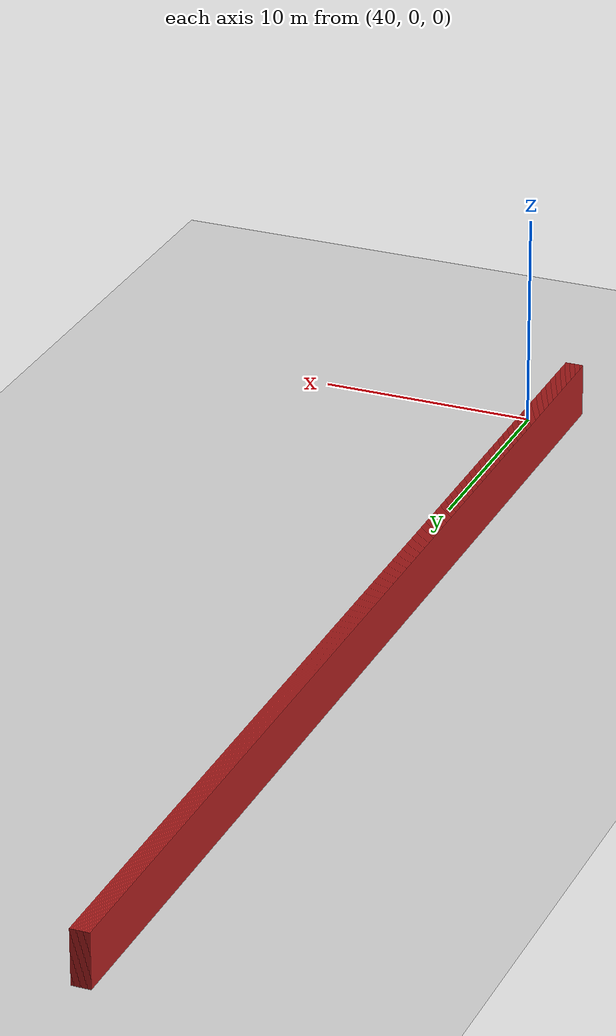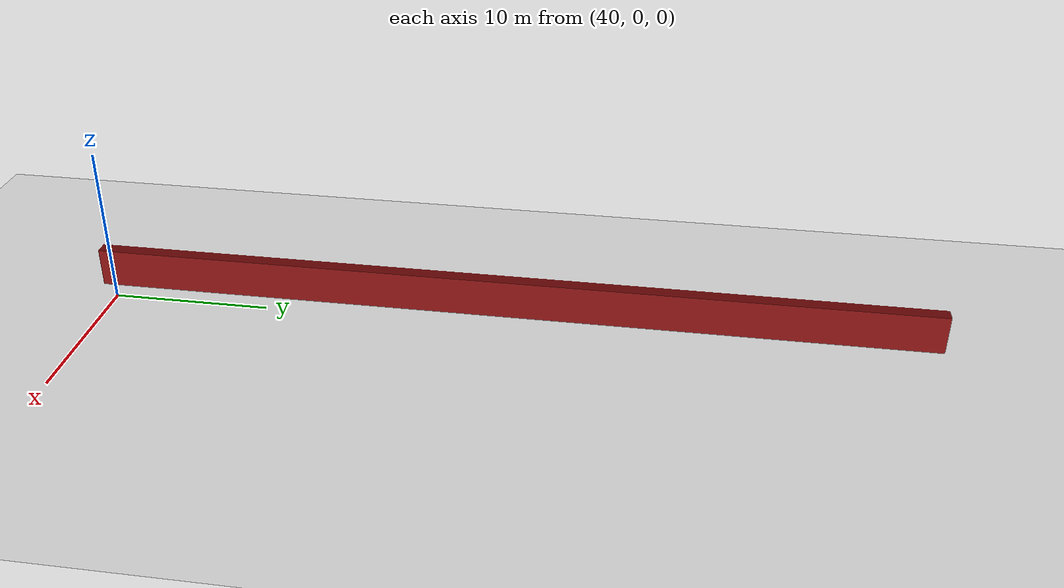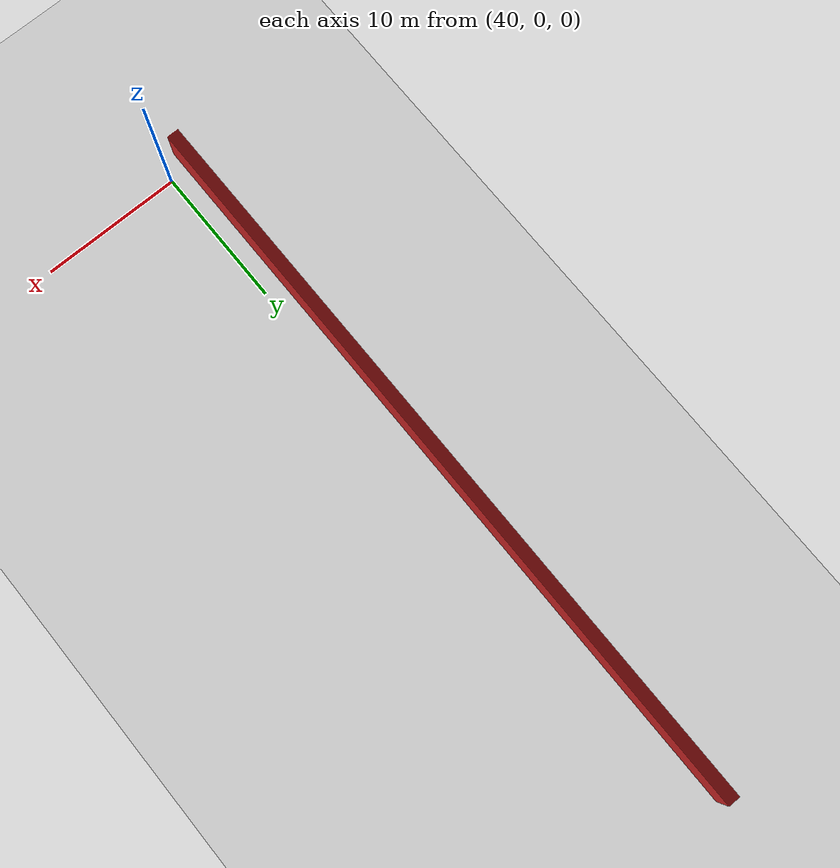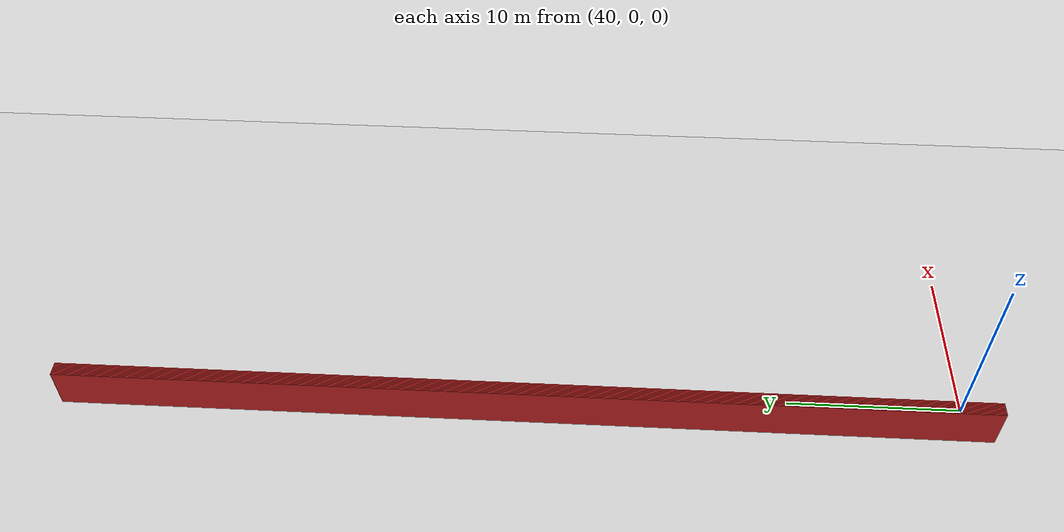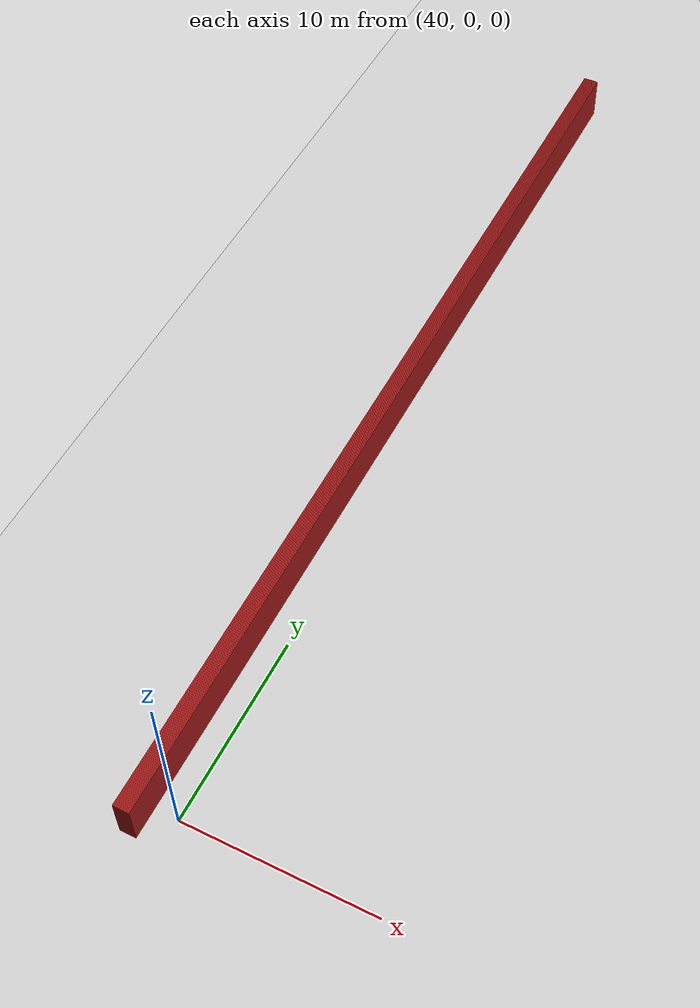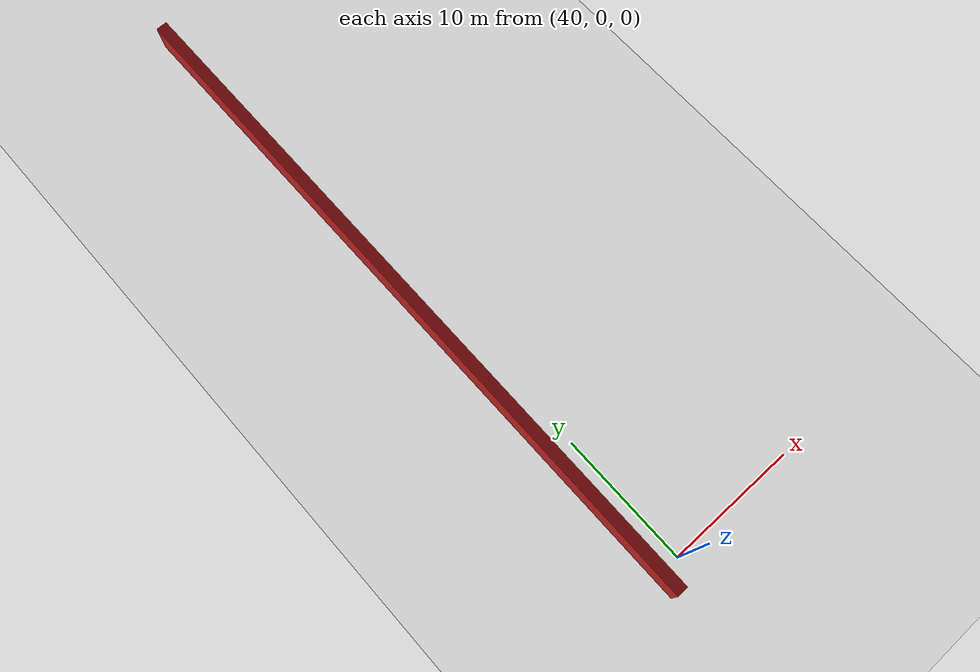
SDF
<sdf version="1.4">
 <world name="1_wall">
  <model name="ground_plane">
   <static>1</static>
   <link name="link">
    <collision name="collision">
     <geometry><plane><normal>0 0 1</normal><size>1000 1000</size></plane></geometry>
     <surface><friction><ode><mu>100</mu><mu2>50</mu2></ode></friction></surface>
    </collision>
    <visual name="visual">
     <cast_shadows>0</cast_shadows>
     <geometry><plane><normal>0 0 1</normal><size>10000 10000</size></plane></geometry>
     <material>
      <script><uri>file://media/materials/scripts/gazebo.material</uri><name>Gazebo/Grey</name></script>
     </material>
    </visual>
    <velocity_decay><linear>0</linear><angular>0</angular></velocity_decay>
   </link>
  </model>
  <model name="Wall_788">
   <static>1</static>
   <link name="Wall_788">
    <collision name="Wall_Collision_788">
     <geometry><box><size>53.65 0.05 2.5</size></box></geometry>
     <pose>0 0 1.25 0 -0 0</pose>
    </collision>
    <visual name="Wall_Visual_788">
     <pose>0 0 1.25 0 -0 0</pose>
     <geometry><box><size>53.65 0.05 2.5</size></box></geometry>
     <material>
      <script><uri>file://media/materials/scripts/gazebo.material</uri><name>Gazebo/Red</name></script>
     </material>
    </visual>
    <velocity_decay><linear>0</linear><angular>0</angular></velocity_decay>
    <pose>37.9 25.3 0 0 0 1.5707963267948966</pose>
   </link>
  </model>
  <model name="Wall_789">
   <static>1</static>
   <link name="Wall_789">
    <collision name="Wall_Collision_789">
     <geometry><box><size>53.65 0.05 2.5</size></box></geometry>
     <pose>0 0 1.25 0 -0 0</pose>
    </collision>
    <visual name="Wall_Visual_789">
     <pose>0 0 1.25 0 -0 0</pose>
     <geometry><box><size>53.65 0.05 2.5</size></box></geometry>
     <material>
      <script><uri>file://media/materials/scripts/gazebo.material</uri><name>Gazebo/Red</name></script>
     </material>
    </visual>
    <velocity_decay><linear>0</linear><angular>0</angular></velocity_decay>
    <pose>37.95 25.3 0 0 0 1.5707963267948966</pose>
   </link>
  </model>
  <model name="Wall_790">
   <static>1</static>
   <link name="Wall_790">
    <collision name="Wall_Collision_790">
     <geometry><box><size>53.65 0.05 2.5</size></box></geometry>
     <pose>0 0 1.25 0 -0 0</pose>
    </collision>
    <visual name="Wall_Visual_790">
     <pose>0 0 1.25 0 -0 0</pose>
     <geometry><box><size>53.65 0.05 2.5</size></box></geometry>
     <material>
      <script><uri>file://media/materials/scripts/gazebo.material</uri><name>Gazebo/Red</name></script>
     </material>
    </visual>
    <velocity_decay><linear>0</linear><angular>0</angular></velocity_decay>
    <pose>38.0 25.3 0 0 0 1.5707963267948966</pose>
   </link>
  </model>
  <model name="Wall_791">
   <static>1</static>
   <link name="Wall_791">
    <collision name="Wall_Collision_791">
     <geometry><box><size>53.65 0.05 2.5</size></box></geometry>
     <pose>0 0 1.25 0 -0 0</pose>
    </collision>
    <visual name="Wall_Visual_791">
     <pose>0 0 1.25 0 -0 0</pose>
     <geometry><box><size>53.65 0.05 2.5</size></box></geometry>
     <material>
      <script><uri>file://media/materials/scripts/gazebo.material</uri><name>Gazebo/Red</name></script>
     </material>
    </visual>
    <velocity_decay><linear>0</linear><angular>0</angular></velocity_decay>
    <pose>38.05 25.3 0 0 0 1.5707963267948966</pose>
   </link>
  </model>
  <model name="Wall_792">
   <static>1</static>
   <link name="Wall_792">
    <collision name="Wall_Collision_792">
     <geometry><box><size>53.65 0.05 2.5</size></box></geometry>
     <pose>0 0 1.25 0 -0 0</pose>
    </collision>
    <visual name="Wall_Visual_792">
     <pose>0 0 1.25 0 -0 0</pose>
     <geometry><box><size>53.65 0.05 2.5</size></box></geometry>
     <material>
      <script><uri>file://media/materials/scripts/gazebo.material</uri><name>Gazebo/Red</name></script>
     </material>
    </visual>
    <velocity_decay><linear>0</linear><angular>0</angular></velocity_decay>
    <pose>38.1 25.3 0 0 0 1.5707963267948966</pose>
   </link>
  </model>
  <model name="Wall_793">
   <static>1</static>
   <link name="Wall_793">
    <collision name="Wall_Collision_793">
     <geometry><box><size>53.65 0.05 2.5</size></box></geometry>
     <pose>0 0 1.25 0 -0 0</pose>
    </collision>
    <visual name="Wall_Visual_793">
     <pose>0 0 1.25 0 -0 0</pose>
     <geometry><box><size>53.65 0.05 2.5</size></box></geometry>
     <material>
      <script><uri>file://media/materials/scripts/gazebo.material</uri><name>Gazebo/Red</name></script>
     </material>
    </visual>
    <velocity_decay><linear>0</linear><angular>0</angular></velocity_decay>
    <pose>38.15 25.3 0 0 0 1.5707963267948966</pose>
   </link>
  </model>
  <model name="Wall_794">
   <static>1</static>
   <link name="Wall_794">
    <collision name="Wall_Collision_794">
     <geometry><box><size>53.65 0.05 2.5</size></box></geometry>
     <pose>0 0 1.25 0 -0 0</pose>
    </collision>
    <visual name="Wall_Visual_794">
     <pose>0 0 1.25 0 -0 0</pose>
     <geometry><box><size>53.65 0.05 2.5</size></box></geometry>
     <material>
      <script><uri>file://media/materials/scripts/gazebo.material</uri><name>Gazebo/Red</name></script>
     </material>
    </visual>
    <velocity_decay><linear>0</linear><angular>0</angular></velocity_decay>
    <pose>38.2 25.3 0 0 0 1.5707963267948966</pose>
   </link>
  </model>
  <model name="Wall_795">
   <static>1</static>
   <link name="Wall_795">
    <collision name="Wall_Collision_795">
     <geometry><box><size>53.65 0.05 2.5</size></box></geometry>
     <pose>0 0 1.25 0 -0 0</pose>
    </collision>
    <visual name="Wall_Visual_795">
     <pose>0 0 1.25 0 -0 0</pose>
     <geometry><box><size>53.65 0.05 2.5</size></box></geometry>
     <material>
      <script><uri>file://media/materials/scripts/gazebo.material</uri><name>Gazebo/Red</name></script>
     </material>
    </visual>
    <velocity_decay><linear>0</linear><angular>0</angular></velocity_decay>
    <pose>38.25 25.3 0 0 0 1.5707963267948966</pose>
   </link>
  </model>
  <model name="Wall_796">
   <static>1</static>
   <link name="Wall_796">
    <collision name="Wall_Collision_796">
     <geometry><box><size>53.65 0.05 2.5</size></box></geometry>
     <pose>0 0 1.25 0 -0 0</pose>
    </collision>
    <visual name="Wall_Visual_796">
     <pose>0 0 1.25 0 -0 0</pose>
     <geometry><box><size>53.65 0.05 2.5</size></box></geometry>
     <material>
      <script><uri>file://media/materials/scripts/gazebo.material</uri><name>Gazebo/Red</name></script>
     </material>
    </visual>
    <velocity_decay><linear>0</linear><angular>0</angular></velocity_decay>
    <pose>38.3 25.3 0 0 0 1.5707963267948966</pose>
   </link>
  </model>
  <model name="Wall_797">
   <static>1</static>
   <link name="Wall_797">
    <collision name="Wall_Collision_797">
     <geometry><box><size>53.65 0.05 2.5</size></box></geometry>
     <pose>0 0 1.25 0 -0 0</pose>
    </collision>
    <visual name="Wall_Visual_797">
     <pose>0 0 1.25 0 -0 0</pose>
     <geometry><box><size>53.65 0.05 2.5</size></box></geometry>
     <material>
      <script><uri>file://media/materials/scripts/gazebo.material</uri><name>Gazebo/Red</name></script>
     </material>
    </visual>
    <velocity_decay><linear>0</linear><angular>0</angular></velocity_decay>
    <pose>38.35 25.3 0 0 0 1.5707963267948966</pose>
   </link>
  </model>
  <model name="Wall_798">
   <static>1</static>
   <link name="Wall_798">
    <collision name="Wall_Collision_798">
     <geometry><box><size>53.65 0.05 2.5</size></box></geometry>
     <pose>0 0 1.25 0 -0 0</pose>
    </collision>
    <visual name="Wall_Visual_798">
     <pose>0 0 1.25 0 -0 0</pose>
     <geometry><box><size>53.65 0.05 2.5</size></box></geometry>
     <material>
      <script><uri>file://media/materials/scripts/gazebo.material</uri><name>Gazebo/Red</name></script>
     </material>
    </visual>
    <velocity_decay><linear>0</linear><angular>0</angular></velocity_decay>
    <pose>38.4 25.3 0 0 0 1.5707963267948966</pose>
   </link>
  </model>
  <model name="Wall_799">
   <static>1</static>
   <link name="Wall_799">
    <collision name="Wall_Collision_799">
     <geometry><box><size>53.65 0.05 2.5</size></box></geometry>
     <pose>0 0 1.25 0 -0 0</pose>
    </collision>
    <visual name="Wall_Visual_799">
     <pose>0 0 1.25 0 -0 0</pose>
     <geometry><box><size>53.65 0.05 2.5</size></box></geometry>
     <material>
      <script><uri>file://media/materials/scripts/gazebo.material</uri><name>Gazebo/Red</name></script>
     </material>
    </visual>
    <velocity_decay><linear>0</linear><angular>0</angular></velocity_decay>
    <pose>38.45 25.3 0 0 0 1.5707963267948966</pose>
   </link>
  </model>
  <model name="Wall_800">
   <static>1</static>
   <link name="Wall_800">
    <collision name="Wall_Collision_800">
     <geometry><box><size>53.65 0.05 2.5</size></box></geometry>
     <pose>0 0 1.25 0 -0 0</pose>
    </collision>
    <visual name="Wall_Visual_800">
     <pose>0 0 1.25 0 -0 0</pose>
     <geometry><box><size>53.65 0.05 2.5</size></box></geometry>
     <material>
      <script><uri>file://media/materials/scripts/gazebo.material</uri><name>Gazebo/Red</name></script>
     </material>
    </visual>
    <velocity_decay><linear>0</linear><angular>0</angular></velocity_decay>
    <pose>38.5 25.3 0 0 0 1.5707963267948966</pose>
   </link>
  </model>
  <model name="Wall_801">
   <static>1</static>
   <link name="Wall_801">
    <collision name="Wall_Collision_801">
     <geometry><box><size>53.65 0.05 2.5</size></box></geometry>
     <pose>0 0 1.25 0 -0 0</pose>
    </collision>
    <visual name="Wall_Visual_801">
     <pose>0 0 1.25 0 -0 0</pose>
     <geometry><box><size>53.65 0.05 2.5</size></box></geometry>
     <material>
      <script><uri>file://media/materials/scripts/gazebo.material</uri><name>Gazebo/Red</name></script>
     </material>
    </visual>
    <velocity_decay><linear>0</linear><angular>0</angular></velocity_decay>
    <pose>38.55 25.3 0 0 0 1.5707963267948966</pose>
   </link>
  </model>
  <model name="Wall_802">
   <static>1</static>
   <link name="Wall_802">
    <collision name="Wall_Collision_802">
     <geometry><box><size>53.65 0.05 2.5</size></box></geometry>
     <pose>0 0 1.25 0 -0 0</pose>
    </collision>
    <visual name="Wall_Visual_802">
     <pose>0 0 1.25 0 -0 0</pose>
     <geometry><box><size>53.65 0.05 2.5</size></box></geometry>
     <material>
      <script><uri>file://media/materials/scripts/gazebo.material</uri><name>Gazebo/Red</name></script>
     </material>
    </visual>
    <velocity_decay><linear>0</linear><angular>0</angular></velocity_decay>
    <pose>38.6 25.3 0 0 0 1.5707963267948966</pose>
   </link>
  </model>
  <model name="Wall_803">
   <static>1</static>
   <link name="Wall_803">
    <collision name="Wall_Collision_803">
     <geometry><box><size>53.65 0.05 2.5</size></box></geometry>
     <pose>0 0 1.25 0 -0 0</pose>
    </collision>
    <visual name="Wall_Visual_803">
     <pose>0 0 1.25 0 -0 0</pose>
     <geometry><box><size>53.65 0.05 2.5</size></box></geometry>
     <material>
      <script><uri>file://media/materials/scripts/gazebo.material</uri><name>Gazebo/Red</name></script>
     </material>
    </visual>
    <velocity_decay><linear>0</linear><angular>0</angular></velocity_decay>
    <pose>38.65 25.3 0 0 0 1.5707963267948966</pose>
   </link>
  </model>
  <model name="Wall_804">
   <static>1</static>
   <link name="Wall_804">
    <collision name="Wall_Collision_804">
     <geometry><box><size>53.65 0.05 2.5</size></box></geometry>
     <pose>0 0 1.25 0 -0 0</pose>
    </collision>
    <visual name="Wall_Visual_804">
     <pose>0 0 1.25 0 -0 0</pose>
     <geometry><box><size>53.65 0.05 2.5</size></box></geometry>
     <material>
      <script><uri>file://media/materials/scripts/gazebo.material</uri><name>Gazebo/Red</name></script>
     </material>
    </visual>
    <velocity_decay><linear>0</linear><angular>0</angular></velocity_decay>
    <pose>38.7 25.3 0 0 0 1.5707963267948966</pose>
   </link>
  </model>
 </world>
</sdf>
